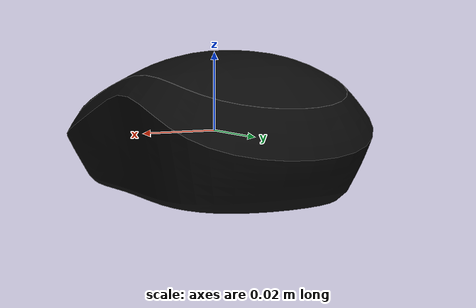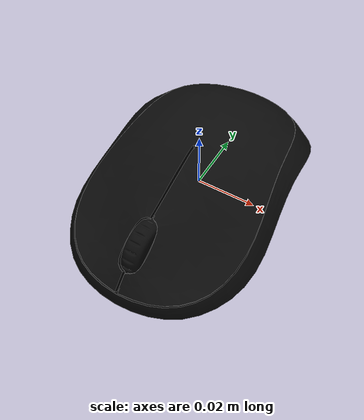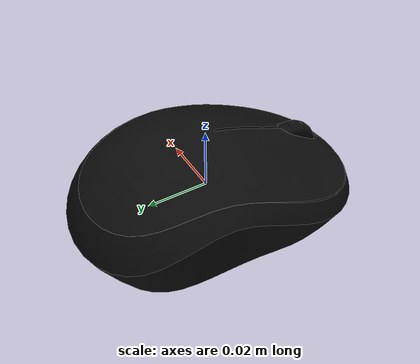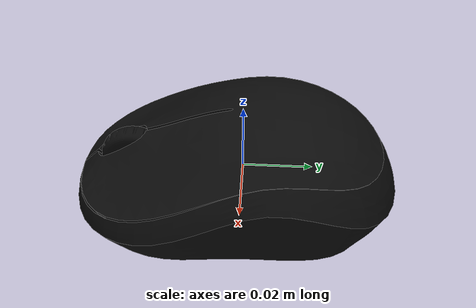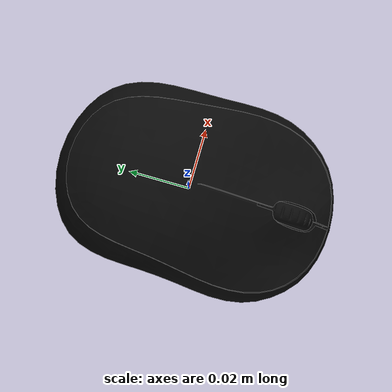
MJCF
<mujoco model="mouse">
  <default>
    <default class="visual">
      <geom group="1" type="mesh" contype="0" conaffinity="0"/>
    </default>
    <default class="collision">
      <geom group="0" type="mesh" solref="0.01 1" solimp="0.99 0.99 0.01" margin="0.001" priority="1" friction="5 10 0.01"/>
    </default>
  </default>
  <asset>
    <material name="Mouse_-_Mat_Grey" specular="0.5" shininess="0.5" rgba="0.040000 0.040000 0.040000 1.000000"/>
    <material name="Mouse_-_Shiny_Grey" specular="0.5" shininess="0.5" rgba="0.035000 0.035000 0.035000 1.000000"/>
    <material name="Mouse_-_Wheel_Grey" specular="0.5" shininess="0.5" rgba="0.040000 0.040000 0.040000 1.000000"/>
    <mesh file="mouse_0.obj" name="mouse_0"/>
    <mesh file="mouse_1.obj" name="mouse_1"/>
    <mesh file="mouse_2.obj" name="mouse_2"/>
    <mesh file="mouse_collision_0.obj" name="mouse_collision_0"/>
    <mesh file="mouse_collision_1.obj" name="mouse_collision_1"/>
  </asset>
  <worldbody>
    <body name="base" pos="0 0 0">
      <body name="object">
      <inertial mass="0.2" pos="0 0 0" diaginertia="10 10 0.001" />
      <geom mesh="mouse_0" material="Mouse_-_Shiny_Grey" class="visual"/>
      <geom mesh="mouse_1" material="Mouse_-_Mat_Grey" class="visual"/>
      <geom mesh="mouse_2" material="Mouse_-_Wheel_Grey" class="visual"/>
      <geom mesh="mouse_collision_0" rgba="1 0 0 0" class="collision"/>
      <geom mesh="mouse_collision_1" rgba="1 0 0 0" class="collision"/>
      </body>
    </body>
  </worldbody>
</mujoco>
